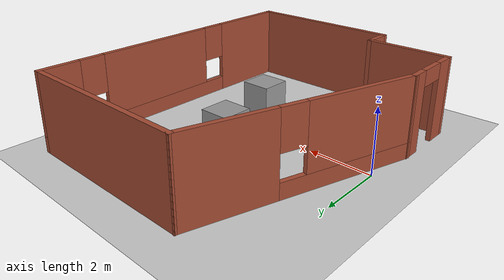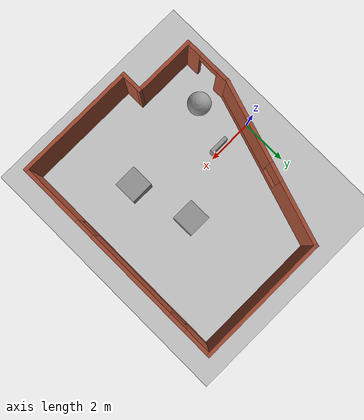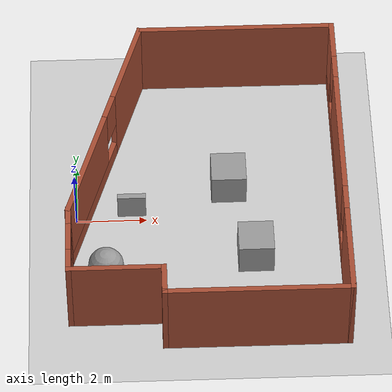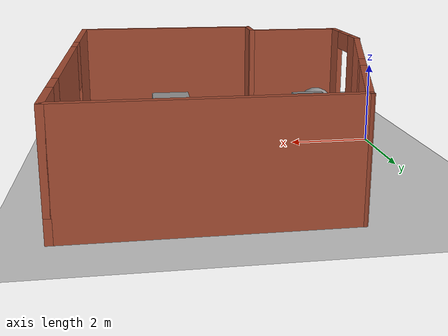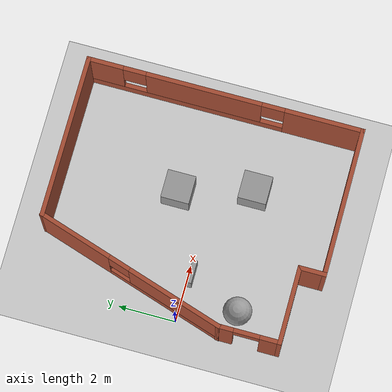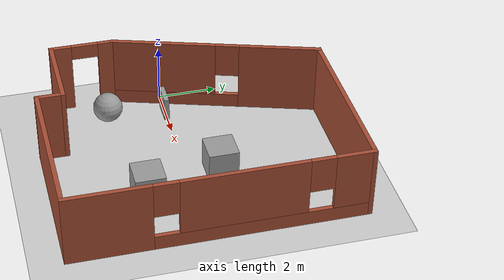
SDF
<sdf version="1.6">
 <world name="default">
  <light name="sun" type="directional">
   <pose>0 0 10 0 -0 0</pose>
   <diffuse>0.8 0.8 0.8 1</diffuse>
   <specular>0.2 0.2 0.2 1</specular>
   <attenuation>
    <range>1000</range>
    <constant>0.9</constant>
    <linear>0.01</linear>
    <quadratic>0.001</quadratic>
   </attenuation>
   <direction>-0.5 0.1 -0.9</direction>
  </light>
  <model name="ground_plane">
   <static>1</static>
   <link name="link">
    <collision name="collision">
     <geometry><plane><normal>0 0 1</normal><size>100 100</size></plane></geometry>
     <surface>
      <contact><collide_bitmask>65535</collide_bitmask></contact>
      <friction><ode><mu>100</mu><mu2>50</mu2></ode></friction>
     </surface>
    </collision>
    <visual name="visual">
     <cast_shadows>0</cast_shadows>
     <geometry><plane><normal>0 0 1</normal><size>100 100</size></plane></geometry>
     <material>
      <script><uri>file://media/materials/scripts/gazebo.material</uri><name>Gazebo/Grey</name></script>
     </material>
    </visual>
   </link>
  </model>
  <gravity>0 0 -9.8</gravity>
  <magnetic_field>6e-06 2.3e-05 -4.2e-05</magnetic_field>
  <atmosphere type="adiabatic"/>
  <physics name="default_physics" default="0" type="ode">
   <max_step_size>0.001</max_step_size>
   <real_time_factor>1</real_time_factor>
   <real_time_update_rate>1000</real_time_update_rate>
  </physics>
  <scene><ambient>0.4 0.4 0.4 1</ambient><background>0.7 0.7 0.7 1</background><shadows>1</shadows></scene>
  <audio><device>default</device></audio>
  <spherical_coordinates>
   <surface_model>EARTH_WGS84</surface_model>
   <latitude_deg>0</latitude_deg>
   <longitude_deg>0</longitude_deg>
   <elevation>0</elevation>
   <heading_deg>0</heading_deg>
  </spherical_coordinates>
  <model name="room">
   <pose>3.67286 0.324571 0 0 -0 0</pose>
   <link name="Wall_2">
    <collision name="Wall_2_Collision">
     <geometry><box><size>5.25 0.15 2.5</size></box></geometry>
     <pose>0 0 1.25 0 -0 0</pose>
    </collision>
    <visual name="Wall_2_Visual">
     <pose>0 0 1.25 0 -0 0</pose>
     <geometry><box><size>5.25 0.15 2.5</size></box></geometry>
     <material>
      <script><uri>file://media/materials/scripts/gazebo.material</uri><name>Gazebo/Bricks</name></script>
      <ambient>1 1 1 1</ambient>
     </material>
     <meta><layer>0</layer></meta>
    </visual>
    <pose>1.30955 -4.80955 0 0 -0 3.14159</pose>
   </link>
   <link name="Wall_3">
    <collision name="Wall_3_Collision">
     <geometry><box><size>1 0.15 2.5</size></box></geometry>
     <pose>0 0 1.25 0 -0 0</pose>
    </collision>
    <visual name="Wall_3_Visual">
     <pose>0 0 1.25 0 -0 0</pose>
     <geometry><box><size>1 0.15 2.5</size></box></geometry>
     <material>
      <script><uri>file://media/materials/scripts/gazebo.material</uri><name>Gazebo/Bricks</name></script>
      <ambient>1 1 1 1</ambient>
     </material>
     <meta><layer>0</layer></meta>
    </visual>
    <pose>-1.24045 -4.38455 0 0 -0 1.5708</pose>
   </link>
   <link name="Wall_4">
    <collision name="Wall_4_Collision">
     <geometry><box><size>2.75 0.15 2.5</size></box></geometry>
     <pose>0 0 1.25 0 -0 0</pose>
    </collision>
    <visual name="Wall_4_Visual">
     <pose>0 0 1.25 0 -0 0</pose>
     <geometry><box><size>2.75 0.15 2.5</size></box></geometry>
     <material>
      <script><uri>file://media/materials/scripts/gazebo.material</uri><name>Gazebo/Bricks</name></script>
      <ambient>1 1 1 1</ambient>
     </material>
     <meta><layer>0</layer></meta>
    </visual>
    <pose>-2.54045 -3.95955 0 0 -0 3.14159</pose>
   </link>
   <link name="Wall_5">
    <pose>-3.84045 -2.90955 0 0 -0 1.5708</pose>
    <visual name="Wall_5_Visual_0">
     <pose>-0.7475 0 1.25 0 -0 0</pose>
     <geometry><box><size>0.755 0.15 2.5</size></box></geometry>
     <material>
      <script><uri>file://media/materials/scripts/gazebo.material</uri><name>Gazebo/Bricks</name></script>
      <ambient>1 1 1 1</ambient>
     </material>
     <meta><layer>0</layer></meta>
    </visual>
    <collision name="Wall_5_Collision_0">
     <geometry><box><size>0.755 0.15 2.5</size></box></geometry>
     <pose>-0.7475 0 1.25 0 -0 0</pose>
    </collision>
    <visual name="Wall_5_Visual_1">
     <pose>0.8275 0 1.25 0 -0 0</pose>
     <geometry><box><size>0.595 0.15 2.5</size></box></geometry>
     <material>
      <script><uri>file://media/materials/scripts/gazebo.material</uri><name>Gazebo/Bricks</name></script>
      <ambient>1 1 1 1</ambient>
     </material>
     <meta><layer>0</layer></meta>
    </visual>
    <collision name="Wall_5_Collision_1">
     <geometry><box><size>0.595 0.15 2.5</size></box></geometry>
     <pose>0.8275 0 1.25 0 -0 0</pose>
    </collision>
    <visual name="Wall_5_Visual_2">
     <pose>0.08 0 2.25 0 -0 0</pose>
     <geometry><box><size>0.9 0.15 0.5</size></box></geometry>
     <material>
      <script><uri>file://media/materials/scripts/gazebo.material</uri><name>Gazebo/Bricks</name></script>
      <ambient>1 1 1 1</ambient>
     </material>
     <meta><layer>0</layer></meta>
    </visual>
    <collision name="Wall_5_Collision_2">
     <geometry><box><size>0.9 0.15 0.5</size></box></geometry>
     <pose>0.08 0 2.25 0 -0 0</pose>
    </collision>
   </link>
   <link name="Wall_7">
    <pose>3.85955 -0.009552 0 0 -0 1.5708</pose>
    <visual name="Wall_7_Visual_0">
     <pose>-3.48231 0 1.25 0 -0 0</pose>
     <geometry><box><size>2.78538 0.15 2.5</size></box></geometry>
     <material>
      <script><uri>file://media/materials/scripts/gazebo.material</uri><name>Gazebo/Bricks</name></script>
      <ambient>1 1 1 1</ambient>
     </material>
     <meta><layer>0</layer></meta>
    </visual>
    <collision name="Wall_7_Collision_0">
     <geometry><box><size>2.78538 0.15 2.5</size></box></geometry>
     <pose>-3.48231 0 1.25 0 -0 0</pose>
    </collision>
    <visual name="Wall_7_Visual_1">
     <pose>1.39269 0 0.25 0 -0 0</pose>
     <geometry><box><size>6.96462 0.15 0.5</size></box></geometry>
     <material>
      <script><uri>file://media/materials/scripts/gazebo.material</uri><name>Gazebo/Bricks</name></script>
      <ambient>1 1 1 1</ambient>
     </material>
     <meta><layer>0</layer></meta>
    </visual>
    <collision name="Wall_7_Collision_1">
     <geometry><box><size>6.96462 0.15 0.5</size></box></geometry>
     <pose>1.39269 0 0.25 0 -0 0</pose>
    </collision>
    <visual name="Wall_7_Visual_2">
     <pose>0.742305 0 1.5 0 -0 0</pose>
     <geometry><box><size>4.06385 0.15 2</size></box></geometry>
     <material>
      <script><uri>file://media/materials/scripts/gazebo.material</uri><name>Gazebo/Bricks</name></script>
      <ambient>1 1 1 1</ambient>
     </material>
     <meta><layer>0</layer></meta>
    </visual>
    <collision name="Wall_7_Collision_2">
     <geometry><box><size>4.06385 0.15 2</size></box></geometry>
     <pose>0.742305 0 1.5 0 -0 0</pose>
    </collision>
    <visual name="Wall_7_Visual_3">
     <pose>4.22461 0 1.5 0 -0 0</pose>
     <geometry><box><size>1.30077 0.15 2</size></box></geometry>
     <material>
      <script><uri>file://media/materials/scripts/gazebo.material</uri><name>Gazebo/Bricks</name></script>
      <ambient>1 1 1 1</ambient>
     </material>
     <meta><layer>0</layer></meta>
    </visual>
    <collision name="Wall_7_Collision_3">
     <geometry><box><size>1.30077 0.15 2</size></box></geometry>
     <pose>4.22461 0 1.5 0 -0 0</pose>
    </collision>
    <visual name="Wall_7_Visual_4">
     <pose>-1.68962 0 1.9 0 -0 0</pose>
     <geometry><box><size>0.8 0.15 1.2</size></box></geometry>
     <material>
      <script><uri>file://media/materials/scripts/gazebo.material</uri><name>Gazebo/Bricks</name></script>
      <ambient>1 1 1 1</ambient>
     </material>
     <meta><layer>0</layer></meta>
    </visual>
    <collision name="Wall_7_Collision_4">
     <geometry><box><size>0.8 0.15 1.2</size></box></geometry>
     <pose>-1.68962 0 1.9 0 -0 0</pose>
    </collision>
    <visual name="Wall_7_Visual_5">
     <pose>3.17423 0 1.9 0 -0 0</pose>
     <geometry><box><size>0.8 0.15 1.2</size></box></geometry>
     <material>
      <script><uri>file://media/materials/scripts/gazebo.material</uri><name>Gazebo/Bricks</name></script>
      <ambient>1 1 1 1</ambient>
     </material>
     <meta><layer>0</layer></meta>
    </visual>
    <collision name="Wall_7_Collision_5">
     <geometry><box><size>0.8 0.15 1.2</size></box></geometry>
     <pose>3.17423 0 1.9 0 -0 0</pose>
    </collision>
   </link>
   <link name="Wall_8">
    <collision name="Wall_8_Collision">
     <geometry><box><size>5.75 0.15 2.5</size></box></geometry>
     <pose>0 0 1.25 0 -0 0</pose>
    </collision>
    <visual name="Wall_8_Visual">
     <pose>0 0 1.25 0 -0 0</pose>
     <geometry><box><size>5.75 0.15 2.5</size></box></geometry>
     <material>
      <script><uri>file://media/materials/scripts/gazebo.material</uri><name>Gazebo/Bricks</name></script>
      <ambient>1 1 1 1</ambient>
     </material>
     <meta><layer>0</layer></meta>
    </visual>
    <pose>1.05955 4.79045 0 0 -0 3.14159</pose>
   </link>
   <link name="Wall_9">
    <pose>-2.79045 1.46545 0 0 -0 -1.87668</pose>
    <visual name="Wall_9_Visual_0">
     <pose>-2.18179 0 1.25 0 -0 0</pose>
     <geometry><box><size>2.76013 0.15 2.5</size></box></geometry>
     <material>
      <script><uri>file://media/materials/scripts/gazebo.material</uri><name>Gazebo/Bricks</name></script>
      <ambient>1 1 1 1</ambient>
     </material>
     <meta><layer>0</layer></meta>
    </visual>
    <collision name="Wall_9_Collision_0">
     <geometry><box><size>2.76013 0.15 2.5</size></box></geometry>
     <pose>-2.18179 0 1.25 0 -0 0</pose>
    </collision>
    <visual name="Wall_9_Visual_1">
     <pose>1.38006 0 0.25 0 -0 0</pose>
     <geometry><box><size>4.36357 0.15 0.5</size></box></geometry>
     <material>
      <script><uri>file://media/materials/scripts/gazebo.material</uri><name>Gazebo/Bricks</name></script>
      <ambient>1 1 1 1</ambient>
     </material>
     <meta><layer>0</layer></meta>
    </visual>
    <collision name="Wall_9_Collision_1">
     <geometry><box><size>4.36357 0.15 0.5</size></box></geometry>
     <pose>1.38006 0 0.25 0 -0 0</pose>
    </collision>
    <visual name="Wall_9_Visual_2">
     <pose>1.78006 0 1.5 0 -0 0</pose>
     <geometry><box><size>3.56357 0.15 2</size></box></geometry>
     <material>
      <script><uri>file://media/materials/scripts/gazebo.material</uri><name>Gazebo/Bricks</name></script>
      <ambient>1 1 1 1</ambient>
     </material>
     <meta><layer>0</layer></meta>
    </visual>
    <collision name="Wall_9_Collision_2">
     <geometry><box><size>3.56357 0.15 2</size></box></geometry>
     <pose>1.78006 0 1.5 0 -0 0</pose>
    </collision>
    <visual name="Wall_9_Visual_3">
     <pose>-0.401722 0 1.9 0 -0 0</pose>
     <geometry><box><size>0.8 0.15 1.2</size></box></geometry>
     <material>
      <script><uri>file://media/materials/scripts/gazebo.material</uri><name>Gazebo/Bricks</name></script>
      <ambient>1 1 1 1</ambient>
     </material>
     <meta><layer>0</layer></meta>
    </visual>
    <collision name="Wall_9_Collision_3">
     <geometry><box><size>0.8 0.15 1.2</size></box></geometry>
     <pose>-0.401722 0 1.9 0 -0 0</pose>
    </collision>
   </link>
   <link name="Window_0">
    <collision name="Window_0_Collision">
     <geometry><box><size>0.8 0.17 0.8</size></box></geometry>
     <pose>0 0 0.4 0 -0 0</pose>
    </collision>
    <visual name="Window_0_Visual">
     <pose>0 0 0.4 0 -0 0</pose>
     <geometry><box><size>0.8 0.17 0.8</size></box></geometry>
     <material>
      <script><uri>file://media/materials/scripts/gazebo.material</uri><name>Gazebo/Grey</name></script>
     </material>
    </visual>
    <pose>-2.08561 -0.475561 0.5 0 -0 0</pose>
   </link>
   <static>1</static>
  </model>
  <model name="unit_box">
   <pose>4.37897 1.09834 0.499995 -1e-05 0 0.002538</pose>
   <link name="link">
    <inertial>
     <mass>1</mass>
     <inertia>
      <ixx>0.166667</ixx>
      <ixy>0</ixy>
      <ixz>0</ixz>
      <iyy>0.166667</iyy>
      <iyz>0</iyz>
      <izz>0.166667</izz>
     </inertia>
    </inertial>
    <collision name="collision"><geometry><box><size>1 1 1</size></box></geometry></collision>
    <visual name="visual">
     <geometry><box><size>1 1 1</size></box></geometry>
     <material>
      <script><name>Gazebo/Grey</name><uri>file://media/materials/scripts/gazebo.material</uri></script>
     </material>
    </visual>
   </link>
  </model>
  <model name="unit_box_0">
   <pose>5.05705 -1.44569 0.499995 -0 -1e-05 0.002535</pose>
   <link name="link">
    <inertial>
     <mass>1</mass>
     <inertia>
      <ixx>0.166667</ixx>
      <ixy>0</ixy>
      <ixz>0</ixz>
      <iyy>0.166667</iyy>
      <iyz>0</iyz>
      <izz>0.166667</izz>
     </inertia>
    </inertial>
    <collision name="collision"><geometry><box><size>1 1 1</size></box></geometry></collision>
    <visual name="visual">
     <geometry><box><size>1 1 1</size></box></geometry>
     <material>
      <script><name>Gazebo/Grey</name><uri>file://media/materials/scripts/gazebo.material</uri></script>
     </material>
    </visual>
   </link>
  </model>
  <model name="unit_sphere">
   <pose>0.828198 -1.96335 0.5 0 -0 0</pose>
   <link name="link">
    <inertial>
     <mass>1</mass>
     <inertia><ixx>0.1</ixx><ixy>0</ixy><ixz>0</ixz><iyy>0.1</iyy><iyz>0</iyz><izz>0.1</izz></inertia>
    </inertial>
    <collision name="collision"><geometry><sphere><radius>0.5</radius></sphere></geometry></collision>
    <visual name="visual">
     <geometry><sphere><radius>0.5</radius></sphere></geometry>
     <material>
      <script><name>Gazebo/Grey</name><uri>file://media/materials/scripts/gazebo.material</uri></script>
     </material>
    </visual>
   </link>
  </model>
 </world>
</sdf>
